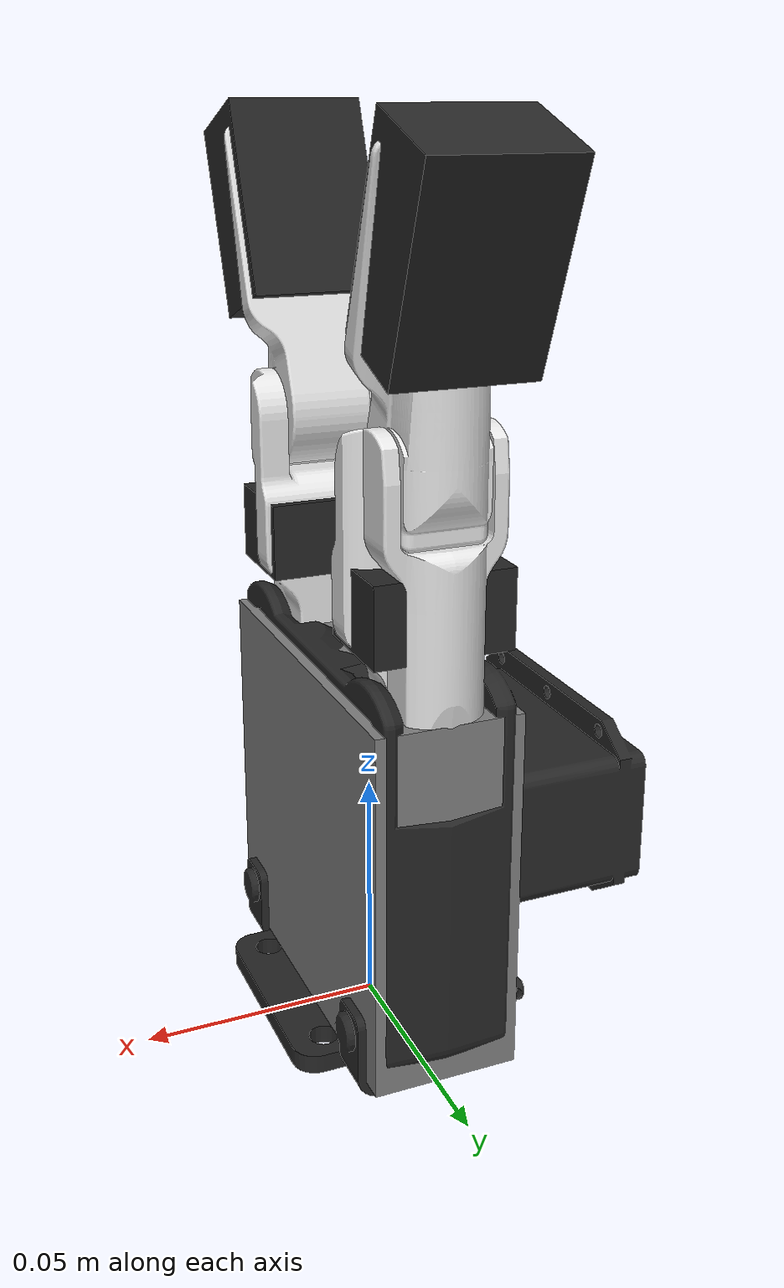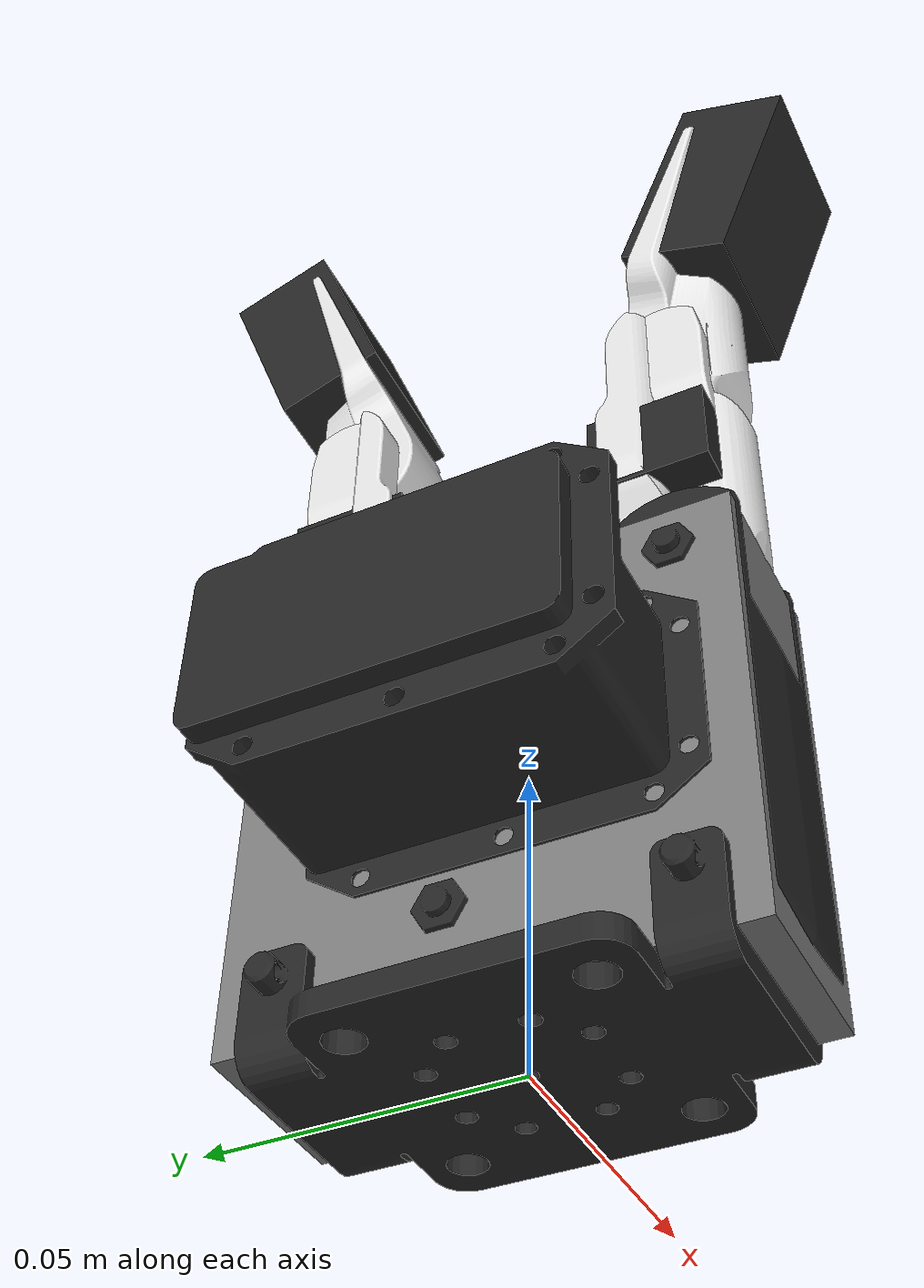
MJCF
<mujoco model="sake_ezgripper">

  <actuator>
      <motor ctrllimited="true" ctrlrange="-20 20" joint="joint_left_driver" gear="1" name="torque_drive"/>
  </actuator>

  <asset>
    <material name="metal" rgba="0.58 0.58 0.58 1"/>
    <material name="black" rgba="0.149 0.149 0.149 1"/>
    <material name="gray" rgba="0.4627 0.4627 0.4627 1"/>
    <material name="white" rgba="0.9 0.9 0.9 1"/>
    <material name="silicone" rgba="0.1882 0.1882 0.1882 1"/>

    <material name="tendon_line" rgba="0.95 0.3 0.3 0"/>
    <material name="tendon_site" rgba="0.1882 0.1882 0.1882 0"/>

    <mesh name="mesh_finger1" file="meshes/ezgripper_gen2/SAKE_Finger_L1_Gen2.stl"/>
    <mesh name="mesh_finger2" file="meshes/ezgripper_gen2/SAKE_Finger_L2_Gen2.stl"/>
    <mesh name="mesh_palm_dual" file="meshes/ezgripper_gen2/SAKE_Palm_Dual_Gen2.stl"/>
  </asset>

  <worldbody>
    <body name="base">
      <geom name="geom_base_viz"
        type="mesh" mesh="mesh_palm_dual"
        quat="0 0.7071068 0 0.7071068"
        group="1"
        material="black"
        />
      <geom name="geom_base_col"
        type="box" pos="0 0 0.042" size="0.015 0.04 0.038"
        group="0"
        />
      <inertial
        mass="0.3" diaginertia="0.01 0.01 0.01"
        pos="0 0 0"
        />
      <site name="site_left_finger1" pos="0 0.03 0" size="0.01" material="tendon_site"/>
      <site name="site_left_finger2" pos="0 0.03 0.062569" size="0.01" material="tendon_site"/>
      <site name="site_right_finger1" pos="0 -0.03 0" size="0.01" material="tendon_site"/>
      <site name="site_right_finger2" pos="0 -0.03 0.062569" size="0.01" material="tendon_site"/>

    <body name="left_finger1" pos="0 0.03 0.072569" quat="-0.5 0.5 0.5 0.5">
      <joint name="joint_left_driver"
        axis="0 1 0"
        limited="true" range="-1.94 1.94"
        solimplimit="0.95 0.99 0.001" solreflimit="0.005 1"
        />
      <geom name="geom_left_finger1"
        type="mesh" mesh="mesh_finger1"
        group="1"
        material="white"
        />
      <geom name="geom_left_finger1_col"
        type="mesh" mesh="mesh_finger1"
        group="0"
        />
      <geom name="geom_left_finger1_pad"
        type="box" pos="0.027 0 -0.003" size="0.008 0.014 0.01"
        group="1"
        material="black"
        />
      <geom name="geom_left_finger1_pad_col"
        type="box" pos="0.027 0 -0.003" size="0.008 0.014 0.01"
        group="0" solimp=".9 .99 .003" solref=".015 1"
        />
      <inertial
        mass=".025" diaginertia="0.01 0.01 0.01"
        pos="0 0 0"
        />
      <site name="site_left_finger3" pos="0.042 0 0.01" size="0.01" material="tendon_site"/>

    <body name="left_finger2" pos="0.052 0 0">
      <joint name="joint_left_coupler"
        axis="0 1 0"
        limited="true" range="0 1.94"
        solimplimit="0.95 0.99 0.001" solreflimit="0.005 1"
        stiffness="0.4" springref="0.0" frictionloss="0.1"
        />
      <geom name="geom_left_finger2"
        type="mesh" mesh="mesh_finger2"
        group="1"
        material="white"
        />
       <geom name="geom_left_finger2_col"
        type="mesh" mesh="mesh_finger2"
        group="0"
        />
      <geom name="geom_left_finger2_pad"
        type="box" pos="0.040 0 0.011" quat="0.9838437 0 -0.1790296 0" size="0.02 0.014 0.01"
        group="1"
        material="black"
        />
      <geom name="geom_left_finger2_pad_col"
        type="box" pos="0.040 0 0.011" quat="0.9838437 0 -0.1790296 0" size="0.02 0.014 0.01"
        group="0" solimp=".9 .99 .003" solref=".015 1"
        />
      <inertial
        mass=".025" diaginertia="0.01 0.01 0.01"
        pos="0 0 0"
        />
      <site name="site_left_finger4" pos="0.05 0 0.01" size="0.01" material="tendon_site"/>

    </body>
    </body>

    <body name="right_finger1" pos="0 -0.03 0.072569" quat="0.5 0.5 -0.5 0.5">
      <joint name="joint_right_driver"
        axis="0 1 0"
        limited="true" range="-1.94 1.94"
        solimplimit="0.95 0.99 0.001" solreflimit="0.005 1"
        />
      <geom name="geom_right_finger1"
        type="mesh" mesh="mesh_finger1"
        group="1"
        material="white"
        />
      <geom name="geom_right_finger1_col"
        type="mesh" mesh="mesh_finger1"
        group="0"
        />
      <geom name="geom_right_finger1_pad"
        type="box" pos="0.027 0 -0.003" size="0.008 0.014 0.01"
        group="1"
        material="black"
        />
      <geom name="geom_right_finger1_pad_col"
        type="box" pos="0.027 0 -0.003" size="0.008 0.014 0.01"
        group="0" solimp=".9 .99 .003" solref=".015 1"
        />
      <inertial
        mass=".025" diaginertia="0.01 0.01 0.01"
        pos="0 0 0"
        />
      <site name="site_right_finger3" pos="0.042 0 0.01" size="0.01" material="tendon_site"/>

    <body name="right_finger2" pos="0.052 0 0">
      <joint name="joint_right_coupler"
        axis="0 1 0"
        limited="true" range="0 1.94"
        solimplimit="0.95 0.99 0.001" solreflimit="0.005 1"
        stiffness="0.4" springref="0.0" frictionloss="0.1"
        />
      <geom name="geom_right_finger2"
        type="mesh" mesh="mesh_finger2"
        group="1"
        material="white"
        />
      <geom name="geom_right_finger2_col"
        type="mesh" mesh="mesh_finger2"
        group="0"
        />
      <geom name="geom_right_finger2_pad"
        type="box" pos="0.040 0 0.011" quat="0.9838437 0 -0.1790296 0" size="0.02 0.014 0.01"
        group="1"
        material="black"
        />
      <geom name="geom_right_finger2_pad_col"
        type="box" pos="0.040 0 0.011" quat="0.9838437 0 -0.1790296 0" size="0.02 0.014 0.01"
        group="0" solimp=".9 .99 .003" solref=".015 1"
        />
      <inertial
        mass=".025" diaginertia="0.01 0.01 0.01"
        pos="0 0 0"
        />
      <site name="site_right_finger4" pos="0.05 0 0.01" size="0.01" material="tendon_site"/>

    </body>
    </body>

    <body name="eef" pos="0 0 0.13" quat="1 0 0 0">
        <!-- This site was added for visualization. -->
    </body>

  </body>

  </worldbody>

  <equality>
    <tendon tendon1="tendon_left" tendon2="tendon_right" polycoef="0 1 0 0 0"
        solimp="0.95 0.99 0.001" solref="0.005 1"/>
    <joint joint1="joint_right_driver" joint2="joint_left_driver" polycoef="0 1 0 0 0"
        solimp="0.95 0.99 0.001" solref="0.005 1"/>
  </equality>

  <tendon>
    <spatial width="0.002" material="tendon_line" name="tendon_left"
      limited="true" range="0 0.5" springlength="0" frictionloss="0.1" stiffness="0.4">
      <site site="site_left_finger1"/>
      <site site="site_left_finger2"/>
      <site site="site_left_finger3"/>
      <site site="site_left_finger4"/>
    </spatial>

    <spatial width="0.002" material="tendon_line" name="tendon_right"
      limited="true" range="0 0.5" springlength="0" frictionloss="0.1" stiffness="0.4">
      <site site="site_right_finger1"/>
      <site site="site_right_finger2"/>
      <site site="site_right_finger3"/>
      <site site="site_right_finger4"/>
    </spatial>

  </tendon>

</mujoco>
